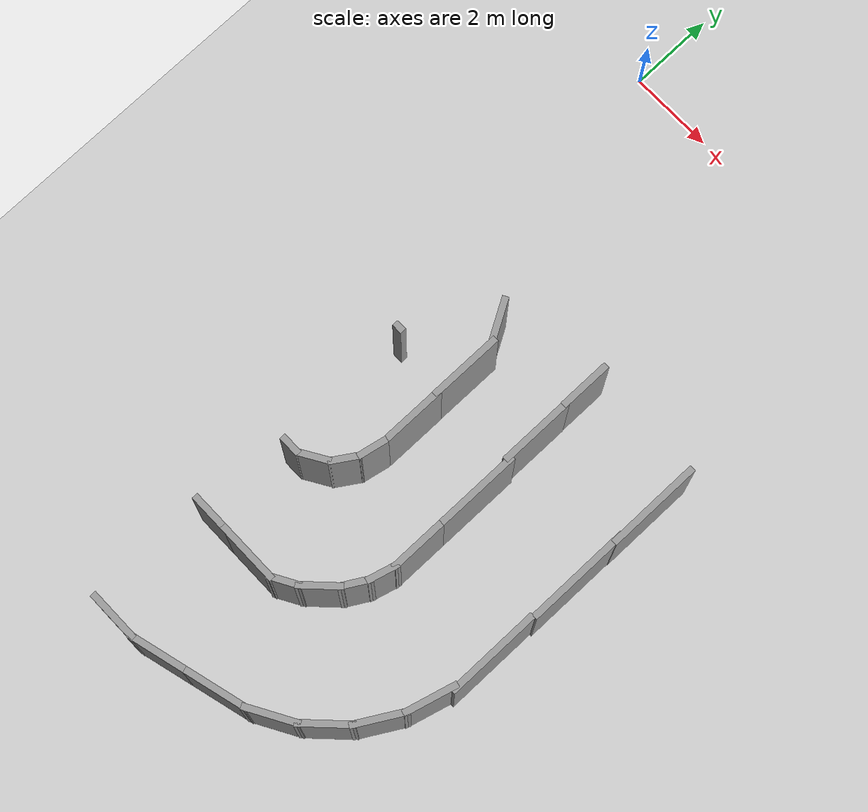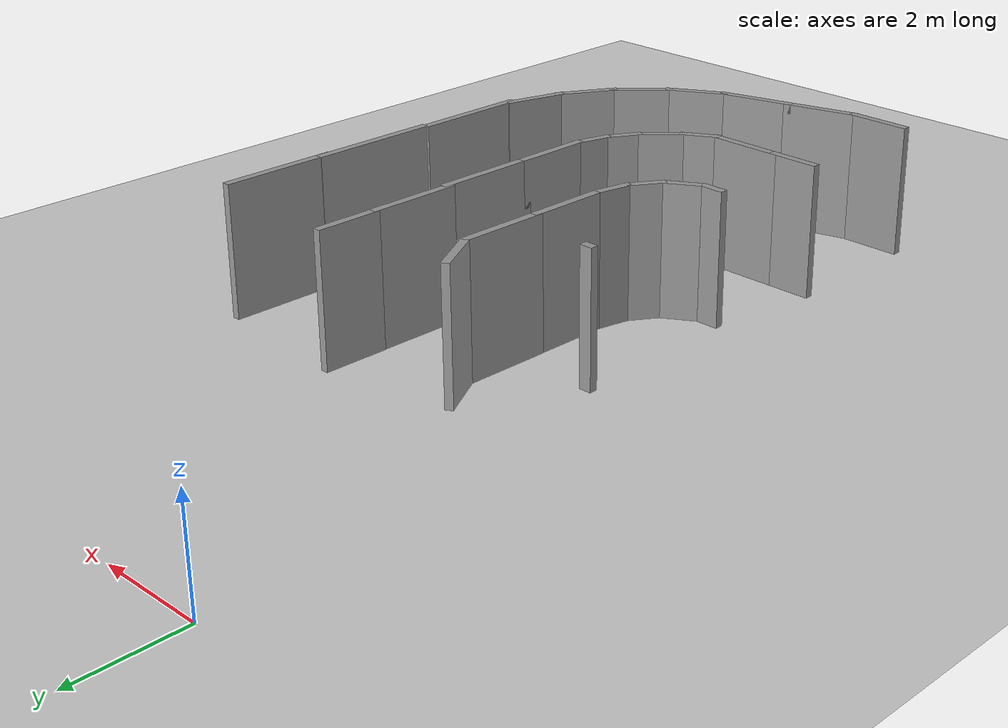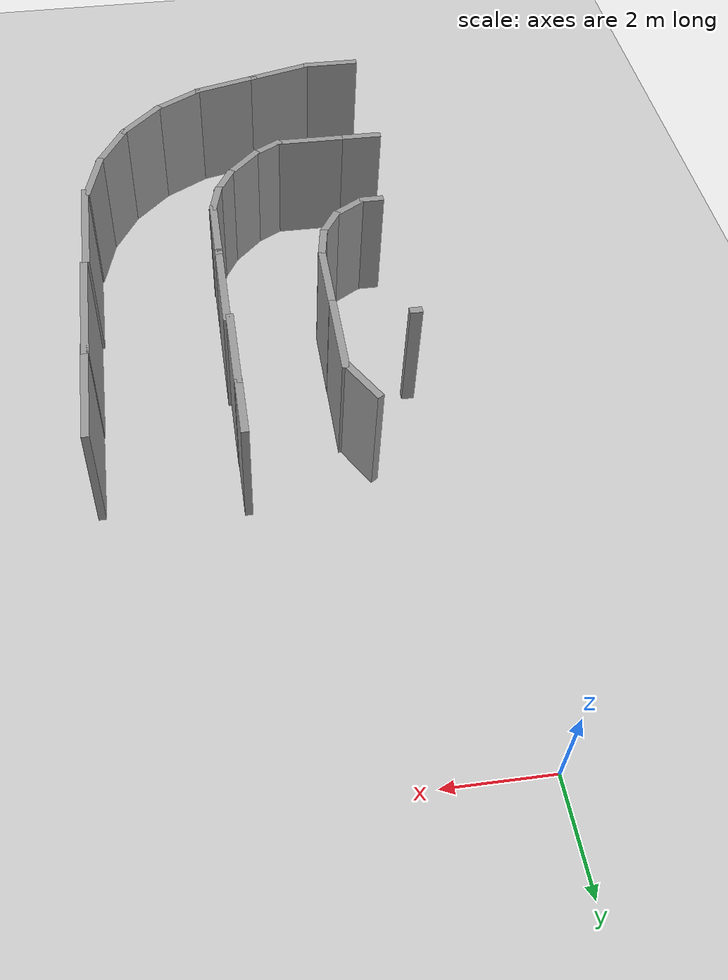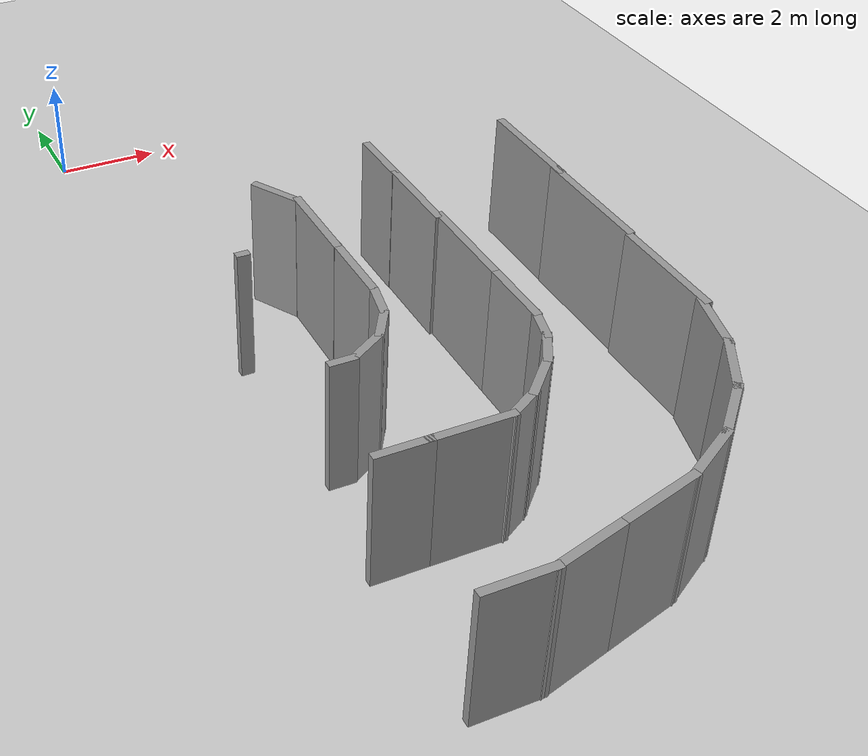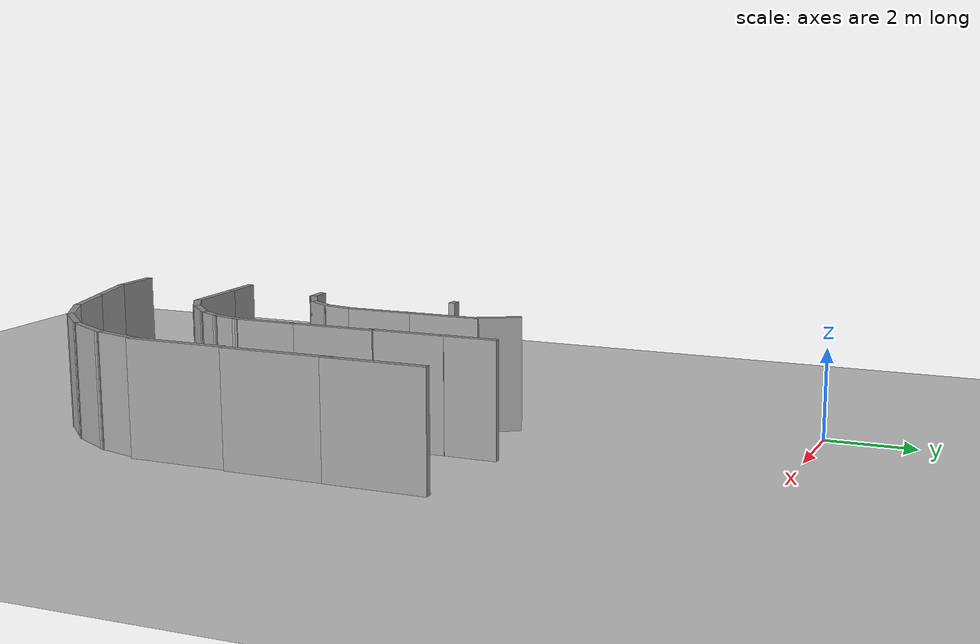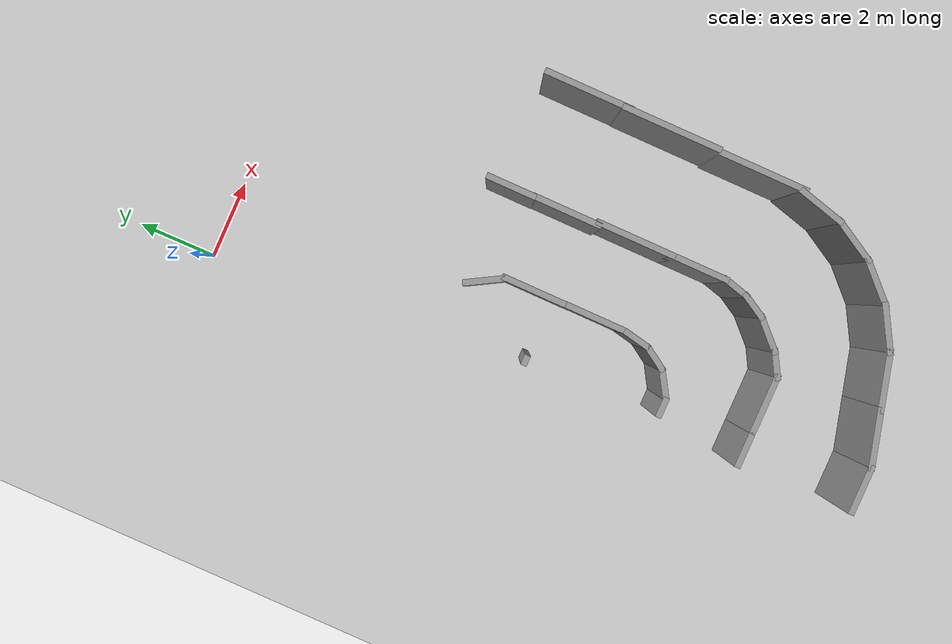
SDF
<sdf version="1.6">
 <world name="default">
  <model name="ground_plane">
   <static>1</static>
   <link name="link">
    <collision name="collision">
     <geometry><plane><normal>0 0 1</normal><size>100 100</size></plane></geometry>
     <surface><friction><ode><mu>100</mu><mu2>50</mu2></ode></friction></surface>
    </collision>
    <visual name="visual">
     <cast_shadows>0</cast_shadows>
     <geometry><plane><normal>0 0 1</normal><size>100 100</size></plane></geometry>
     <material>
      <script><uri>file://media/materials/scripts/gazebo.material</uri><name>Gazebo/Grey</name></script>
     </material>
    </visual>
   </link>
  </model>
  <model name="c-Snail_update_clone">
   <link name="Wall_19">
    <pose>0.800174 -5.81597 0 0 -0 0</pose>
    <visual name="Wall_19_Visual">
     <pose>0 0 1.25 0 -0 0</pose>
     <geometry><box><size>2.25 0.15 2.5</size></box></geometry>
     <material>
      <script><uri>file://media/materials/scripts/gazebo.material</uri><name>Gazebo/Grey</name></script>
      <ambient>1 1 1 1</ambient>
     </material>
     <meta><layer>0</layer></meta>
    </visual>
    <collision name="Wall_19_Collision">
     <pose>0 0 1.25 0 -0 0</pose>
     <geometry><box><size>2.25 0.15 2.5</size></box></geometry>
     <surface>
      <friction>
       <ode><mu>1</mu><mu2>1</mu2><fdir1>0 0 0</fdir1><slip1>0</slip1><slip2>0</slip2></ode>
       <torsional>
        <coefficient>1</coefficient>
        <patch_radius>0</patch_radius>
        <surface_radius>0</surface_radius>
        <use_patch_radius>1</use_patch_radius>
        <ode><slip>0</slip></ode>
       </torsional>
      </friction>
      <bounce><restitution_coefficient>0</restitution_coefficient><threshold>1e+06</threshold></bounce>
      <contact>
       <collide_without_contact>0</collide_without_contact>
       <collide_without_contact_bitmask>1</collide_without_contact_bitmask>
       <collide_bitmask>1</collide_bitmask>
       <ode>
        <soft_cfm>0</soft_cfm>
        <soft_erp>0.2</soft_erp>
        <kp>1e+13</kp>
        <kd>1</kd>
        <max_vel>0.01</max_vel>
        <min_depth>0</min_depth>
       </ode>
       <bullet>
        <split_impulse>1</split_impulse>
        <split_impulse_penetration_threshold>-0.01</split_impulse_penetration_threshold>
        <soft_cfm>0</soft_cfm>
        <soft_erp>0.2</soft_erp>
        <kp>1e+13</kp>
        <kd>1</kd>
       </bullet>
      </contact>
     </surface>
    </collision>
   </link>
   <link name="Wall_20">
    <pose>2.90214 -5.80096 0 0 -0 0</pose>
    <visual name="Wall_20_Visual">
     <pose>0 0 1.25 0 -0 0</pose>
     <geometry><box><size>2.5 0.15 2.5</size></box></geometry>
     <material>
      <script><uri>file://media/materials/scripts/gazebo.material</uri><name>Gazebo/Grey</name></script>
      <ambient>1 1 1 1</ambient>
     </material>
     <meta><layer>0</layer></meta>
    </visual>
    <collision name="Wall_20_Collision">
     <pose>0 0 1.25 0 -0 0</pose>
     <geometry><box><size>2.5 0.15 2.5</size></box></geometry>
     <surface>
      <friction>
       <ode><mu>1</mu><mu2>1</mu2><fdir1>0 0 0</fdir1><slip1>0</slip1><slip2>0</slip2></ode>
       <torsional>
        <coefficient>1</coefficient>
        <patch_radius>0</patch_radius>
        <surface_radius>0</surface_radius>
        <use_patch_radius>1</use_patch_radius>
        <ode><slip>0</slip></ode>
       </torsional>
      </friction>
      <bounce><restitution_coefficient>0</restitution_coefficient><threshold>1e+06</threshold></bounce>
      <contact>
       <collide_without_contact>0</collide_without_contact>
       <collide_without_contact_bitmask>1</collide_without_contact_bitmask>
       <collide_bitmask>1</collide_bitmask>
       <ode>
        <soft_cfm>0</soft_cfm>
        <soft_erp>0.2</soft_erp>
        <kp>1e+13</kp>
        <kd>1</kd>
        <max_vel>0.01</max_vel>
        <min_depth>0</min_depth>
       </ode>
       <bullet>
        <split_impulse>1</split_impulse>
        <split_impulse_penetration_threshold>-0.01</split_impulse_penetration_threshold>
        <soft_cfm>0</soft_cfm>
        <soft_erp>0.2</soft_erp>
        <kp>1e+13</kp>
        <kd>1</kd>
       </bullet>
      </contact>
     </surface>
    </collision>
   </link>
   <link name="Wall_21">
    <pose>5.25228 -5.75509 0 0 -0 0</pose>
    <visual name="Wall_21_Visual">
     <pose>0 0 1.25 0 -0 0</pose>
     <geometry><box><size>2.25 0.15 2.5</size></box></geometry>
     <material>
      <script><uri>file://media/materials/scripts/gazebo.material</uri><name>Gazebo/Grey</name></script>
      <ambient>1 1 1 1</ambient>
     </material>
     <meta><layer>0</layer></meta>
    </visual>
    <collision name="Wall_21_Collision">
     <pose>0 0 1.25 0 -0 0</pose>
     <geometry><box><size>2.25 0.15 2.5</size></box></geometry>
     <surface>
      <friction>
       <ode><mu>1</mu><mu2>1</mu2><fdir1>0 0 0</fdir1><slip1>0</slip1><slip2>0</slip2></ode>
       <torsional>
        <coefficient>1</coefficient>
        <patch_radius>0</patch_radius>
        <surface_radius>0</surface_radius>
        <use_patch_radius>1</use_patch_radius>
        <ode><slip>0</slip></ode>
       </torsional>
      </friction>
      <bounce><restitution_coefficient>0</restitution_coefficient><threshold>1e+06</threshold></bounce>
      <contact>
       <collide_without_contact>0</collide_without_contact>
       <collide_without_contact_bitmask>1</collide_without_contact_bitmask>
       <collide_bitmask>1</collide_bitmask>
       <ode>
        <soft_cfm>0</soft_cfm>
        <soft_erp>0.2</soft_erp>
        <kp>1e+13</kp>
        <kd>1</kd>
        <max_vel>0.01</max_vel>
        <min_depth>0</min_depth>
       </ode>
       <bullet>
        <split_impulse>1</split_impulse>
        <split_impulse_penetration_threshold>-0.01</split_impulse_penetration_threshold>
        <soft_cfm>0</soft_cfm>
        <soft_erp>0.2</soft_erp>
        <kp>1e+13</kp>
        <kd>1</kd>
       </bullet>
      </contact>
     </surface>
    </collision>
   </link>
   <link name="Wall_22">
    <pose>6.78859 -5.56286 0 0 -0 0.261799</pose>
    <visual name="Wall_22_Visual">
     <pose>0 0 1.25 0 -0 0</pose>
     <geometry><box><size>1.25 0.15 2.5</size></box></geometry>
     <material>
      <script><uri>file://media/materials/scripts/gazebo.material</uri><name>Gazebo/Grey</name></script>
      <ambient>1 1 1 1</ambient>
     </material>
     <meta><layer>0</layer></meta>
    </visual>
    <collision name="Wall_22_Collision">
     <pose>0 0 1.25 0 -0 0</pose>
     <geometry><box><size>1.25 0.15 2.5</size></box></geometry>
     <surface>
      <friction>
       <ode><mu>1</mu><mu2>1</mu2><fdir1>0 0 0</fdir1><slip1>0</slip1><slip2>0</slip2></ode>
       <torsional>
        <coefficient>1</coefficient>
        <patch_radius>0</patch_radius>
        <surface_radius>0</surface_radius>
        <use_patch_radius>1</use_patch_radius>
        <ode><slip>0</slip></ode>
       </torsional>
      </friction>
      <bounce><restitution_coefficient>0</restitution_coefficient><threshold>1e+06</threshold></bounce>
      <contact>
       <collide_without_contact>0</collide_without_contact>
       <collide_without_contact_bitmask>1</collide_without_contact_bitmask>
       <collide_bitmask>1</collide_bitmask>
       <ode>
        <soft_cfm>0</soft_cfm>
        <soft_erp>0.2</soft_erp>
        <kp>1e+13</kp>
        <kd>1</kd>
        <max_vel>0.01</max_vel>
        <min_depth>0</min_depth>
       </ode>
       <bullet>
        <split_impulse>1</split_impulse>
        <split_impulse_penetration_threshold>-0.01</split_impulse_penetration_threshold>
        <soft_cfm>0</soft_cfm>
        <soft_erp>0.2</soft_erp>
        <kp>1e+13</kp>
        <kd>1</kd>
       </bullet>
      </contact>
     </surface>
    </collision>
   </link>
   <link name="Wall_23">
    <pose>7.79617 -5.14551 0 0 -0 0.523599</pose>
    <visual name="Wall_23_Visual">
     <pose>0 0 1.25 0 -0 0</pose>
     <geometry><box><size>1.25 0.15 2.5</size></box></geometry>
     <material>
      <script><uri>file://media/materials/scripts/gazebo.material</uri><name>Gazebo/Grey</name></script>
      <ambient>1 1 1 1</ambient>
     </material>
     <meta><layer>0</layer></meta>
    </visual>
    <collision name="Wall_23_Collision">
     <pose>0 0 1.25 0 -0 0</pose>
     <geometry><box><size>1.25 0.15 2.5</size></box></geometry>
     <surface>
      <friction>
       <ode><mu>1</mu><mu2>1</mu2><fdir1>0 0 0</fdir1><slip1>0</slip1><slip2>0</slip2></ode>
       <torsional>
        <coefficient>1</coefficient>
        <patch_radius>0</patch_radius>
        <surface_radius>0</surface_radius>
        <use_patch_radius>1</use_patch_radius>
        <ode><slip>0</slip></ode>
       </torsional>
      </friction>
      <bounce><restitution_coefficient>0</restitution_coefficient><threshold>1e+06</threshold></bounce>
      <contact>
       <collide_without_contact>0</collide_without_contact>
       <collide_without_contact_bitmask>1</collide_without_contact_bitmask>
       <collide_bitmask>1</collide_bitmask>
       <ode>
        <soft_cfm>0</soft_cfm>
        <soft_erp>0.2</soft_erp>
        <kp>1e+13</kp>
        <kd>1</kd>
        <max_vel>0.01</max_vel>
        <min_depth>0</min_depth>
       </ode>
       <bullet>
        <split_impulse>1</split_impulse>
        <split_impulse_penetration_threshold>-0.01</split_impulse_penetration_threshold>
        <soft_cfm>0</soft_cfm>
        <soft_erp>0.2</soft_erp>
        <kp>1e+13</kp>
        <kd>1</kd>
       </bullet>
      </contact>
     </surface>
    </collision>
   </link>
   <link name="Wall_24">
    <pose>8.66139 -4.4816 0 0 -0 0.785398</pose>
    <visual name="Wall_24_Visual">
     <pose>0 0 1.25 0 -0 0</pose>
     <geometry><box><size>1.25 0.15 2.5</size></box></geometry>
     <material>
      <script><uri>file://media/materials/scripts/gazebo.material</uri><name>Gazebo/Grey</name></script>
      <ambient>1 1 1 1</ambient>
     </material>
     <meta><layer>0</layer></meta>
    </visual>
    <collision name="Wall_24_Collision">
     <pose>0 0 1.25 0 -0 0</pose>
     <geometry><box><size>1.25 0.15 2.5</size></box></geometry>
     <surface>
      <friction>
       <ode><mu>1</mu><mu2>1</mu2><fdir1>0 0 0</fdir1><slip1>0</slip1><slip2>0</slip2></ode>
       <torsional>
        <coefficient>1</coefficient>
        <patch_radius>0</patch_radius>
        <surface_radius>0</surface_radius>
        <use_patch_radius>1</use_patch_radius>
        <ode><slip>0</slip></ode>
       </torsional>
      </friction>
      <bounce><restitution_coefficient>0</restitution_coefficient><threshold>1e+06</threshold></bounce>
      <contact>
       <collide_without_contact>0</collide_without_contact>
       <collide_without_contact_bitmask>1</collide_without_contact_bitmask>
       <collide_bitmask>1</collide_bitmask>
       <ode>
        <soft_cfm>0</soft_cfm>
        <soft_erp>0.2</soft_erp>
        <kp>1e+13</kp>
        <kd>1</kd>
        <max_vel>0.01</max_vel>
        <min_depth>0</min_depth>
       </ode>
       <bullet>
        <split_impulse>1</split_impulse>
        <split_impulse_penetration_threshold>-0.01</split_impulse_penetration_threshold>
        <soft_cfm>0</soft_cfm>
        <soft_erp>0.2</soft_erp>
        <kp>1e+13</kp>
        <kd>1</kd>
       </bullet>
      </contact>
     </surface>
    </collision>
   </link>
   <link name="Wall_25">
    <pose>9.3253 -3.61638 0 0 -0 1.0472</pose>
    <visual name="Wall_25_Visual">
     <pose>0 0 1.25 0 -0 0</pose>
     <geometry><box><size>1.25 0.15 2.5</size></box></geometry>
     <material>
      <script><uri>file://media/materials/scripts/gazebo.material</uri><name>Gazebo/Grey</name></script>
      <ambient>1 1 1 1</ambient>
     </material>
     <meta><layer>0</layer></meta>
    </visual>
    <collision name="Wall_25_Collision">
     <pose>0 0 1.25 0 -0 0</pose>
     <geometry><box><size>1.25 0.15 2.5</size></box></geometry>
     <surface>
      <friction>
       <ode><mu>1</mu><mu2>1</mu2><fdir1>0 0 0</fdir1><slip1>0</slip1><slip2>0</slip2></ode>
       <torsional>
        <coefficient>1</coefficient>
        <patch_radius>0</patch_radius>
        <surface_radius>0</surface_radius>
        <use_patch_radius>1</use_patch_radius>
        <ode><slip>0</slip></ode>
       </torsional>
      </friction>
      <bounce><restitution_coefficient>0</restitution_coefficient><threshold>1e+06</threshold></bounce>
      <contact>
       <collide_without_contact>0</collide_without_contact>
       <collide_without_contact_bitmask>1</collide_without_contact_bitmask>
       <collide_bitmask>1</collide_bitmask>
       <ode>
        <soft_cfm>0</soft_cfm>
        <soft_erp>0.2</soft_erp>
        <kp>1e+13</kp>
        <kd>1</kd>
        <max_vel>0.01</max_vel>
        <min_depth>0</min_depth>
       </ode>
       <bullet>
        <split_impulse>1</split_impulse>
        <split_impulse_penetration_threshold>-0.01</split_impulse_penetration_threshold>
        <soft_cfm>0</soft_cfm>
        <soft_erp>0.2</soft_erp>
        <kp>1e+13</kp>
        <kd>1</kd>
       </bullet>
      </contact>
     </surface>
    </collision>
   </link>
   <link name="Wall_26">
    <pose>9.775 -2.48806 0 0 -0 1.309</pose>
    <visual name="Wall_26_Visual">
     <pose>0 0 1.25 0 -0 0</pose>
     <geometry><box><size>1.5 0.15 2.5</size></box></geometry>
     <material>
      <script><uri>file://media/materials/scripts/gazebo.material</uri><name>Gazebo/Grey</name></script>
      <ambient>1 1 1 1</ambient>
     </material>
     <meta><layer>0</layer></meta>
    </visual>
    <collision name="Wall_26_Collision">
     <pose>0 0 1.25 0 -0 0</pose>
     <geometry><box><size>1.5 0.15 2.5</size></box></geometry>
     <surface>
      <friction>
       <ode><mu>1</mu><mu2>1</mu2><fdir1>0 0 0</fdir1><slip1>0</slip1><slip2>0</slip2></ode>
       <torsional>
        <coefficient>1</coefficient>
        <patch_radius>0</patch_radius>
        <surface_radius>0</surface_radius>
        <use_patch_radius>1</use_patch_radius>
        <ode><slip>0</slip></ode>
       </torsional>
      </friction>
      <bounce><restitution_coefficient>0</restitution_coefficient><threshold>1e+06</threshold></bounce>
      <contact>
       <collide_without_contact>0</collide_without_contact>
       <collide_without_contact_bitmask>1</collide_without_contact_bitmask>
       <collide_bitmask>1</collide_bitmask>
       <ode>
        <soft_cfm>0</soft_cfm>
        <soft_erp>0.2</soft_erp>
        <kp>1e+13</kp>
        <kd>1</kd>
        <max_vel>0.01</max_vel>
        <min_depth>0</min_depth>
       </ode>
       <bullet>
        <split_impulse>1</split_impulse>
        <split_impulse_penetration_threshold>-0.01</split_impulse_penetration_threshold>
        <soft_cfm>0</soft_cfm>
        <soft_erp>0.2</soft_erp>
        <kp>1e+13</kp>
        <kd>1</kd>
       </bullet>
      </contact>
     </surface>
    </collision>
   </link>
   <link name="Wall_27">
    <pose>10.1244 -1.18406 0 0 -0 1.309</pose>
    <visual name="Wall_27_Visual">
     <pose>0 0 1.25 0 -0 0</pose>
     <geometry><box><size>1.5 0.15 2.5</size></box></geometry>
     <material>
      <script><uri>file://media/materials/scripts/gazebo.material</uri><name>Gazebo/Grey</name></script>
      <ambient>1 1 1 1</ambient>
     </material>
     <meta><layer>0</layer></meta>
    </visual>
    <collision name="Wall_27_Collision">
     <pose>0 0 1.25 0 -0 0</pose>
     <geometry><box><size>1.5 0.15 2.5</size></box></geometry>
     <surface>
      <friction>
       <ode><mu>1</mu><mu2>1</mu2><fdir1>0 0 0</fdir1><slip1>0</slip1><slip2>0</slip2></ode>
       <torsional>
        <coefficient>1</coefficient>
        <patch_radius>0</patch_radius>
        <surface_radius>0</surface_radius>
        <use_patch_radius>1</use_patch_radius>
        <ode><slip>0</slip></ode>
       </torsional>
      </friction>
      <bounce><restitution_coefficient>0</restitution_coefficient><threshold>1e+06</threshold></bounce>
      <contact>
       <collide_without_contact>0</collide_without_contact>
       <collide_without_contact_bitmask>1</collide_without_contact_bitmask>
       <collide_bitmask>1</collide_bitmask>
       <ode>
        <soft_cfm>0</soft_cfm>
        <soft_erp>0.2</soft_erp>
        <kp>1e+13</kp>
        <kd>1</kd>
        <max_vel>0.01</max_vel>
        <min_depth>0</min_depth>
       </ode>
       <bullet>
        <split_impulse>1</split_impulse>
        <split_impulse_penetration_threshold>-0.01</split_impulse_penetration_threshold>
        <soft_cfm>0</soft_cfm>
        <soft_erp>0.2</soft_erp>
        <kp>1e+13</kp>
        <kd>1</kd>
       </bullet>
      </contact>
     </surface>
    </collision>
   </link>
   <link name="Wall_28">
    <pose>10.2991 0.017937 0 0 -0 1.5708</pose>
    <visual name="Wall_28_Visual">
     <pose>0 0 1.25 0 -0 0</pose>
     <geometry><box><size>1.25 0.15 2.5</size></box></geometry>
     <material>
      <script><uri>file://media/materials/scripts/gazebo.material</uri><name>Gazebo/Grey</name></script>
      <ambient>1 1 1 1</ambient>
     </material>
     <meta><layer>0</layer></meta>
    </visual>
    <collision name="Wall_28_Collision">
     <pose>0 0 1.25 0 -0 0</pose>
     <geometry><box><size>1.25 0.15 2.5</size></box></geometry>
     <surface>
      <friction>
       <ode><mu>1</mu><mu2>1</mu2><fdir1>0 0 0</fdir1><slip1>0</slip1><slip2>0</slip2></ode>
       <torsional>
        <coefficient>1</coefficient>
        <patch_radius>0</patch_radius>
        <surface_radius>0</surface_radius>
        <use_patch_radius>1</use_patch_radius>
        <ode><slip>0</slip></ode>
       </torsional>
      </friction>
      <bounce><restitution_coefficient>0</restitution_coefficient><threshold>1e+06</threshold></bounce>
      <contact>
       <collide_without_contact>0</collide_without_contact>
       <collide_without_contact_bitmask>1</collide_without_contact_bitmask>
       <collide_bitmask>1</collide_bitmask>
       <ode>
        <soft_cfm>0</soft_cfm>
        <soft_erp>0.2</soft_erp>
        <kp>1e+13</kp>
        <kd>1</kd>
        <max_vel>0.01</max_vel>
        <min_depth>0</min_depth>
       </ode>
       <bullet>
        <split_impulse>1</split_impulse>
        <split_impulse_penetration_threshold>-0.01</split_impulse_penetration_threshold>
        <soft_cfm>0</soft_cfm>
        <soft_erp>0.2</soft_erp>
        <kp>1e+13</kp>
        <kd>1</kd>
       </bullet>
      </contact>
     </surface>
    </collision>
   </link>
   <link name="Wall_46">
    <pose>0.062812 -3.06018 0 0 -0 0</pose>
    <visual name="Wall_46_Visual">
     <pose>0 0 1.25 0 -0 0</pose>
     <geometry><box><size>1.25 0.15 2.5</size></box></geometry>
     <material>
      <script><uri>file://media/materials/scripts/gazebo.material</uri><name>Gazebo/Grey</name></script>
      <ambient>1 1 1 1</ambient>
     </material>
     <meta><layer>0</layer></meta>
    </visual>
    <collision name="Wall_46_Collision">
     <pose>0 0 1.25 0 -0 0</pose>
     <geometry><box><size>1.25 0.15 2.5</size></box></geometry>
     <surface>
      <friction>
       <ode><mu>1</mu><mu2>1</mu2><fdir1>0 0 0</fdir1><slip1>0</slip1><slip2>0</slip2></ode>
       <torsional>
        <coefficient>1</coefficient>
        <patch_radius>0</patch_radius>
        <surface_radius>0</surface_radius>
        <use_patch_radius>1</use_patch_radius>
        <ode><slip>0</slip></ode>
       </torsional>
      </friction>
      <bounce><restitution_coefficient>0</restitution_coefficient><threshold>1e+06</threshold></bounce>
      <contact>
       <collide_without_contact>0</collide_without_contact>
       <collide_without_contact_bitmask>1</collide_without_contact_bitmask>
       <collide_bitmask>1</collide_bitmask>
       <ode>
        <soft_cfm>0</soft_cfm>
        <soft_erp>0.2</soft_erp>
        <kp>1e+13</kp>
        <kd>1</kd>
        <max_vel>0.01</max_vel>
        <min_depth>0</min_depth>
       </ode>
       <bullet>
        <split_impulse>1</split_impulse>
        <split_impulse_penetration_threshold>-0.01</split_impulse_penetration_threshold>
        <soft_cfm>0</soft_cfm>
        <soft_erp>0.2</soft_erp>
        <kp>1e+13</kp>
        <kd>1</kd>
       </bullet>
      </contact>
     </surface>
    </collision>
   </link>
   <link name="Wall_47">
    <pose>1.4692 -3.06934 0 0 -0 0</pose>
    <visual name="Wall_47_Visual">
     <pose>0 0 1.25 0 -0 0</pose>
     <geometry><box><size>1.75 0.15 2.5</size></box></geometry>
     <material>
      <script><uri>file://media/materials/scripts/gazebo.material</uri><name>Gazebo/Grey</name></script>
      <ambient>1 1 1 1</ambient>
     </material>
     <meta><layer>0</layer></meta>
    </visual>
    <collision name="Wall_47_Collision">
     <pose>0 0 1.25 0 -0 0</pose>
     <geometry><box><size>1.75 0.15 2.5</size></box></geometry>
     <surface>
      <friction>
       <ode><mu>1</mu><mu2>1</mu2><fdir1>0 0 0</fdir1><slip1>0</slip1><slip2>0</slip2></ode>
       <torsional>
        <coefficient>1</coefficient>
        <patch_radius>0</patch_radius>
        <surface_radius>0</surface_radius>
        <use_patch_radius>1</use_patch_radius>
        <ode><slip>0</slip></ode>
       </torsional>
      </friction>
      <bounce><restitution_coefficient>0</restitution_coefficient><threshold>1e+06</threshold></bounce>
      <contact>
       <collide_without_contact>0</collide_without_contact>
       <collide_without_contact_bitmask>1</collide_without_contact_bitmask>
       <collide_bitmask>1</collide_bitmask>
       <ode>
        <soft_cfm>0</soft_cfm>
        <soft_erp>0.2</soft_erp>
        <kp>1e+13</kp>
        <kd>1</kd>
        <max_vel>0.01</max_vel>
        <min_depth>0</min_depth>
       </ode>
       <bullet>
        <split_impulse>1</split_impulse>
        <split_impulse_penetration_threshold>-0.01</split_impulse_penetration_threshold>
        <soft_cfm>0</soft_cfm>
        <soft_erp>0.2</soft_erp>
        <kp>1e+13</kp>
        <kd>1</kd>
       </bullet>
      </contact>
     </surface>
    </collision>
   </link>
   <link name="Wall_48">
    <pose>3.18497 -3.12574 0 0 -0 0</pose>
    <visual name="Wall_48_Visual">
     <pose>0 0 1.25 0 -0 0</pose>
     <geometry><box><size>2 0.15 2.5</size></box></geometry>
     <material>
      <script><uri>file://media/materials/scripts/gazebo.material</uri><name>Gazebo/Grey</name></script>
      <ambient>1 1 1 1</ambient>
     </material>
     <meta><layer>0</layer></meta>
    </visual>
    <collision name="Wall_48_Collision">
     <pose>0 0 1.25 0 -0 0</pose>
     <geometry><box><size>2 0.15 2.5</size></box></geometry>
     <surface>
      <friction>
       <ode><mu>1</mu><mu2>1</mu2><fdir1>0 0 0</fdir1><slip1>0</slip1><slip2>0</slip2></ode>
       <torsional>
        <coefficient>1</coefficient>
        <patch_radius>0</patch_radius>
        <surface_radius>0</surface_radius>
        <use_patch_radius>1</use_patch_radius>
        <ode><slip>0</slip></ode>
       </torsional>
      </friction>
      <bounce><restitution_coefficient>0</restitution_coefficient><threshold>1e+06</threshold></bounce>
      <contact>
       <collide_without_contact>0</collide_without_contact>
       <collide_without_contact_bitmask>1</collide_without_contact_bitmask>
       <collide_bitmask>1</collide_bitmask>
       <ode>
        <soft_cfm>0</soft_cfm>
        <soft_erp>0.2</soft_erp>
        <kp>1e+13</kp>
        <kd>1</kd>
        <max_vel>0.01</max_vel>
        <min_depth>0</min_depth>
       </ode>
       <bullet>
        <split_impulse>1</split_impulse>
        <split_impulse_penetration_threshold>-0.01</split_impulse_penetration_threshold>
        <soft_cfm>0</soft_cfm>
        <soft_erp>0.2</soft_erp>
        <kp>1e+13</kp>
        <kd>1</kd>
       </bullet>
      </contact>
     </surface>
    </collision>
   </link>
   <link name="Wall_49">
    <pose>4.78497 -3.12574 0 0 -0 0</pose>
    <visual name="Wall_49_Visual">
     <pose>0 0 1.25 0 -0 0</pose>
     <geometry><box><size>1.5 0.15 2.5</size></box></geometry>
     <material>
      <script><uri>file://media/materials/scripts/gazebo.material</uri><name>Gazebo/Grey</name></script>
      <ambient>1 1 1 1</ambient>
     </material>
     <meta><layer>0</layer></meta>
    </visual>
    <collision name="Wall_49_Collision">
     <pose>0 0 1.25 0 -0 0</pose>
     <geometry><box><size>1.5 0.15 2.5</size></box></geometry>
     <surface>
      <friction>
       <ode><mu>1</mu><mu2>1</mu2><fdir1>0 0 0</fdir1><slip1>0</slip1><slip2>0</slip2></ode>
       <torsional>
        <coefficient>1</coefficient>
        <patch_radius>0</patch_radius>
        <surface_radius>0</surface_radius>
        <use_patch_radius>1</use_patch_radius>
        <ode><slip>0</slip></ode>
       </torsional>
      </friction>
      <bounce><restitution_coefficient>0</restitution_coefficient><threshold>1e+06</threshold></bounce>
      <contact>
       <collide_without_contact>0</collide_without_contact>
       <collide_without_contact_bitmask>1</collide_without_contact_bitmask>
       <collide_bitmask>1</collide_bitmask>
       <ode>
        <soft_cfm>0</soft_cfm>
        <soft_erp>0.2</soft_erp>
        <kp>1e+13</kp>
        <kd>1</kd>
        <max_vel>0.01</max_vel>
        <min_depth>0</min_depth>
       </ode>
       <bullet>
        <split_impulse>1</split_impulse>
        <split_impulse_penetration_threshold>-0.01</split_impulse_penetration_threshold>
        <soft_cfm>0</soft_cfm>
        <soft_erp>0.2</soft_erp>
        <kp>1e+13</kp>
        <kd>1</kd>
       </bullet>
      </contact>
     </surface>
    </collision>
   </link>
   <link name="Wall_50">
    <pose>5.74975 -3.04809 0 0 -0 0.261799</pose>
    <visual name="Wall_50_Visual">
     <pose>0 0 1.25 0 -0 0</pose>
     <geometry><box><size>0.75 0.15 2.5</size></box></geometry>
     <material>
      <script><uri>file://media/materials/scripts/gazebo.material</uri><name>Gazebo/Grey</name></script>
      <ambient>1 1 1 1</ambient>
     </material>
     <meta><layer>0</layer></meta>
    </visual>
    <collision name="Wall_50_Collision">
     <pose>0 0 1.25 0 -0 0</pose>
     <geometry><box><size>0.75 0.15 2.5</size></box></geometry>
     <surface>
      <friction>
       <ode><mu>1</mu><mu2>1</mu2><fdir1>0 0 0</fdir1><slip1>0</slip1><slip2>0</slip2></ode>
       <torsional>
        <coefficient>1</coefficient>
        <patch_radius>0</patch_radius>
        <surface_radius>0</surface_radius>
        <use_patch_radius>1</use_patch_radius>
        <ode><slip>0</slip></ode>
       </torsional>
      </friction>
      <bounce><restitution_coefficient>0</restitution_coefficient><threshold>1e+06</threshold></bounce>
      <contact>
       <collide_without_contact>0</collide_without_contact>
       <collide_without_contact_bitmask>1</collide_without_contact_bitmask>
       <collide_bitmask>1</collide_bitmask>
       <ode>
        <soft_cfm>0</soft_cfm>
        <soft_erp>0.2</soft_erp>
        <kp>1e+13</kp>
        <kd>1</kd>
        <max_vel>0.01</max_vel>
        <min_depth>0</min_depth>
       </ode>
       <bullet>
        <split_impulse>1</split_impulse>
        <split_impulse_penetration_threshold>-0.01</split_impulse_penetration_threshold>
        <soft_cfm>0</soft_cfm>
        <soft_erp>0.2</soft_erp>
        <kp>1e+13</kp>
        <kd>1</kd>
       </bullet>
      </contact>
     </surface>
    </collision>
   </link>
   <link name="Wall_51">
    <pose>6.29933 -2.82045 0 0 -0 0.523599</pose>
    <visual name="Wall_51_Visual">
     <pose>0 0 1.25 0 -0 0</pose>
     <geometry><box><size>0.75 0.15 2.5</size></box></geometry>
     <material>
      <script><uri>file://media/materials/scripts/gazebo.material</uri><name>Gazebo/Grey</name></script>
      <ambient>1 1 1 1</ambient>
     </material>
     <meta><layer>0</layer></meta>
    </visual>
    <collision name="Wall_51_Collision">
     <pose>0 0 1.25 0 -0 0</pose>
     <geometry><box><size>0.75 0.15 2.5</size></box></geometry>
     <surface>
      <friction>
       <ode><mu>1</mu><mu2>1</mu2><fdir1>0 0 0</fdir1><slip1>0</slip1><slip2>0</slip2></ode>
       <torsional>
        <coefficient>1</coefficient>
        <patch_radius>0</patch_radius>
        <surface_radius>0</surface_radius>
        <use_patch_radius>1</use_patch_radius>
        <ode><slip>0</slip></ode>
       </torsional>
      </friction>
      <bounce><restitution_coefficient>0</restitution_coefficient><threshold>1e+06</threshold></bounce>
      <contact>
       <collide_without_contact>0</collide_without_contact>
       <collide_without_contact_bitmask>1</collide_without_contact_bitmask>
       <collide_bitmask>1</collide_bitmask>
       <ode>
        <soft_cfm>0</soft_cfm>
        <soft_erp>0.2</soft_erp>
        <kp>1e+13</kp>
        <kd>1</kd>
        <max_vel>0.01</max_vel>
        <min_depth>0</min_depth>
       </ode>
       <bullet>
        <split_impulse>1</split_impulse>
        <split_impulse_penetration_threshold>-0.01</split_impulse_penetration_threshold>
        <soft_cfm>0</soft_cfm>
        <soft_erp>0.2</soft_erp>
        <kp>1e+13</kp>
        <kd>1</kd>
       </bullet>
      </contact>
     </surface>
    </collision>
   </link>
   <link name="Wall_52">
    <pose>6.85966 -2.36993 0 0 -0 0.785398</pose>
    <visual name="Wall_52_Visual">
     <pose>0 0 1.25 0 -0 0</pose>
     <geometry><box><size>1 0.15 2.5</size></box></geometry>
     <material>
      <script><uri>file://media/materials/scripts/gazebo.material</uri><name>Gazebo/Grey</name></script>
      <ambient>1 1 1 1</ambient>
     </material>
     <meta><layer>0</layer></meta>
    </visual>
    <collision name="Wall_52_Collision">
     <pose>0 0 1.25 0 -0 0</pose>
     <geometry><box><size>1 0.15 2.5</size></box></geometry>
     <surface>
      <friction>
       <ode><mu>1</mu><mu2>1</mu2><fdir1>0 0 0</fdir1><slip1>0</slip1><slip2>0</slip2></ode>
       <torsional>
        <coefficient>1</coefficient>
        <patch_radius>0</patch_radius>
        <surface_radius>0</surface_radius>
        <use_patch_radius>1</use_patch_radius>
        <ode><slip>0</slip></ode>
       </torsional>
      </friction>
      <bounce><restitution_coefficient>0</restitution_coefficient><threshold>1e+06</threshold></bounce>
      <contact>
       <collide_without_contact>0</collide_without_contact>
       <collide_without_contact_bitmask>1</collide_without_contact_bitmask>
       <collide_bitmask>1</collide_bitmask>
       <ode>
        <soft_cfm>0</soft_cfm>
        <soft_erp>0.2</soft_erp>
        <kp>1e+13</kp>
        <kd>1</kd>
        <max_vel>0.01</max_vel>
        <min_depth>0</min_depth>
       </ode>
       <bullet>
        <split_impulse>1</split_impulse>
        <split_impulse_penetration_threshold>-0.01</split_impulse_penetration_threshold>
        <soft_cfm>0</soft_cfm>
        <soft_erp>0.2</soft_erp>
        <kp>1e+13</kp>
        <kd>1</kd>
       </bullet>
      </contact>
     </surface>
    </collision>
   </link>
   <link name="Wall_53">
    <pose>7.31018 -1.8096 0 0 -0 1.0472</pose>
    <visual name="Wall_53_Visual">
     <pose>0 0 1.25 0 -0 0</pose>
     <geometry><box><size>0.75 0.15 2.5</size></box></geometry>
     <material>
      <script><uri>file://media/materials/scripts/gazebo.material</uri><name>Gazebo/Grey</name></script>
      <ambient>1 1 1 1</ambient>
     </material>
     <meta><layer>0</layer></meta>
    </visual>
    <collision name="Wall_53_Collision">
     <pose>0 0 1.25 0 -0 0</pose>
     <geometry><box><size>0.75 0.15 2.5</size></box></geometry>
     <surface>
      <friction>
       <ode><mu>1</mu><mu2>1</mu2><fdir1>0 0 0</fdir1><slip1>0</slip1><slip2>0</slip2></ode>
       <torsional>
        <coefficient>1</coefficient>
        <patch_radius>0</patch_radius>
        <surface_radius>0</surface_radius>
        <use_patch_radius>1</use_patch_radius>
        <ode><slip>0</slip></ode>
       </torsional>
      </friction>
      <bounce><restitution_coefficient>0</restitution_coefficient><threshold>1e+06</threshold></bounce>
      <contact>
       <collide_without_contact>0</collide_without_contact>
       <collide_without_contact_bitmask>1</collide_without_contact_bitmask>
       <collide_bitmask>1</collide_bitmask>
       <ode>
        <soft_cfm>0</soft_cfm>
        <soft_erp>0.2</soft_erp>
        <kp>1e+13</kp>
        <kd>1</kd>
        <max_vel>0.01</max_vel>
        <min_depth>0</min_depth>
       </ode>
       <bullet>
        <split_impulse>1</split_impulse>
        <split_impulse_penetration_threshold>-0.01</split_impulse_penetration_threshold>
        <soft_cfm>0</soft_cfm>
        <soft_erp>0.2</soft_erp>
        <kp>1e+13</kp>
        <kd>1</kd>
       </bullet>
      </contact>
     </surface>
    </collision>
   </link>
   <link name="Wall_54">
    <pose>7.46018 -0.874794 0 0 -0 1.5708</pose>
    <visual name="Wall_54_Visual">
     <pose>0 0 1.25 0 -0 0</pose>
     <geometry><box><size>1.5 0.15 2.5</size></box></geometry>
     <material>
      <script><uri>file://media/materials/scripts/gazebo.material</uri><name>Gazebo/Grey</name></script>
      <ambient>1 1 1 1</ambient>
     </material>
     <meta><layer>0</layer></meta>
    </visual>
    <collision name="Wall_54_Collision">
     <pose>0 0 1.25 0 -0 0</pose>
     <geometry><box><size>1.5 0.15 2.5</size></box></geometry>
     <surface>
      <friction>
       <ode><mu>1</mu><mu2>1</mu2><fdir1>0 0 0</fdir1><slip1>0</slip1><slip2>0</slip2></ode>
       <torsional>
        <coefficient>1</coefficient>
        <patch_radius>0</patch_radius>
        <surface_radius>0</surface_radius>
        <use_patch_radius>1</use_patch_radius>
        <ode><slip>0</slip></ode>
       </torsional>
      </friction>
      <bounce><restitution_coefficient>0</restitution_coefficient><threshold>1e+06</threshold></bounce>
      <contact>
       <collide_without_contact>0</collide_without_contact>
       <collide_without_contact_bitmask>1</collide_without_contact_bitmask>
       <collide_bitmask>1</collide_bitmask>
       <ode>
        <soft_cfm>0</soft_cfm>
        <soft_erp>0.2</soft_erp>
        <kp>1e+13</kp>
        <kd>1</kd>
        <max_vel>0.01</max_vel>
        <min_depth>0</min_depth>
       </ode>
       <bullet>
        <split_impulse>1</split_impulse>
        <split_impulse_penetration_threshold>-0.01</split_impulse_penetration_threshold>
        <soft_cfm>0</soft_cfm>
        <soft_erp>0.2</soft_erp>
        <kp>1e+13</kp>
        <kd>1</kd>
       </bullet>
      </contact>
     </surface>
    </collision>
   </link>
   <link name="Wall_55">
    <pose>7.46018 0.225207 0 0 -0 1.5708</pose>
    <visual name="Wall_55_Visual">
     <pose>0 0 1.25 0 -0 0</pose>
     <geometry><box><size>1 0.15 2.5</size></box></geometry>
     <material>
      <script><uri>file://media/materials/scripts/gazebo.material</uri><name>Gazebo/Grey</name></script>
      <ambient>1 1 1 1</ambient>
     </material>
     <meta><layer>0</layer></meta>
    </visual>
    <collision name="Wall_55_Collision">
     <pose>0 0 1.25 0 -0 0</pose>
     <geometry><box><size>1 0.15 2.5</size></box></geometry>
     <surface>
      <friction>
       <ode><mu>1</mu><mu2>1</mu2><fdir1>0 0 0</fdir1><slip1>0</slip1><slip2>0</slip2></ode>
       <torsional>
        <coefficient>1</coefficient>
        <patch_radius>0</patch_radius>
        <surface_radius>0</surface_radius>
        <use_patch_radius>1</use_patch_radius>
        <ode><slip>0</slip></ode>
       </torsional>
      </friction>
      <bounce><restitution_coefficient>0</restitution_coefficient><threshold>1e+06</threshold></bounce>
      <contact>
       <collide_without_contact>0</collide_without_contact>
       <collide_without_contact_bitmask>1</collide_without_contact_bitmask>
       <collide_bitmask>1</collide_bitmask>
       <ode>
        <soft_cfm>0</soft_cfm>
        <soft_erp>0.2</soft_erp>
        <kp>1e+13</kp>
        <kd>1</kd>
        <max_vel>0.01</max_vel>
        <min_depth>0</min_depth>
       </ode>
       <bullet>
        <split_impulse>1</split_impulse>
        <split_impulse_penetration_threshold>-0.01</split_impulse_penetration_threshold>
        <soft_cfm>0</soft_cfm>
        <soft_erp>0.2</soft_erp>
        <kp>1e+13</kp>
        <kd>1</kd>
       </bullet>
      </contact>
     </surface>
    </collision>
   </link>
   <link name="Wall_69">
    <pose>0.371942 -0.821214 0 0 0 -0.523599</pose>
    <visual name="Wall_69_Visual">
     <pose>0 0 1.25 0 -0 0</pose>
     <geometry><box><size>1 0.15 2.5</size></box></geometry>
     <material>
      <script><uri>file://media/materials/scripts/gazebo.material</uri><name>Gazebo/Grey</name></script>
      <ambient>1 1 1 1</ambient>
     </material>
     <meta><layer>0</layer></meta>
    </visual>
    <collision name="Wall_69_Collision">
     <pose>0 0 1.25 0 -0 0</pose>
     <geometry><box><size>1 0.15 2.5</size></box></geometry>
     <surface>
      <friction>
       <ode><mu>1</mu><mu2>1</mu2><fdir1>0 0 0</fdir1><slip1>0</slip1><slip2>0</slip2></ode>
       <torsional>
        <coefficient>1</coefficient>
        <patch_radius>0</patch_radius>
        <surface_radius>0</surface_radius>
        <use_patch_radius>1</use_patch_radius>
        <ode><slip>0</slip></ode>
       </torsional>
      </friction>
      <bounce><restitution_coefficient>0</restitution_coefficient><threshold>1e+06</threshold></bounce>
      <contact>
       <collide_without_contact>0</collide_without_contact>
       <collide_without_contact_bitmask>1</collide_without_contact_bitmask>
       <collide_bitmask>1</collide_bitmask>
       <ode>
        <soft_cfm>0</soft_cfm>
        <soft_erp>0.2</soft_erp>
        <kp>1e+13</kp>
        <kd>1</kd>
        <max_vel>0.01</max_vel>
        <min_depth>0</min_depth>
       </ode>
       <bullet>
        <split_impulse>1</split_impulse>
        <split_impulse_penetration_threshold>-0.01</split_impulse_penetration_threshold>
        <soft_cfm>0</soft_cfm>
        <soft_erp>0.2</soft_erp>
        <kp>1e+13</kp>
        <kd>1</kd>
       </bullet>
      </contact>
     </surface>
    </collision>
   </link>
   <link name="Wall_70">
    <pose>1.58585 -1.08327 0 0 -0 0</pose>
    <visual name="Wall_70_Visual">
     <pose>0 0 1.25 0 -0 0</pose>
     <geometry><box><size>1.75 0.15 2.5</size></box></geometry>
     <material>
      <script><uri>file://media/materials/scripts/gazebo.material</uri><name>Gazebo/Grey</name></script>
      <ambient>1 1 1 1</ambient>
     </material>
     <meta><layer>0</layer></meta>
    </visual>
    <collision name="Wall_70_Collision">
     <pose>0 0 1.25 0 -0 0</pose>
     <geometry><box><size>1.75 0.15 2.5</size></box></geometry>
     <surface>
      <friction>
       <ode><mu>1</mu><mu2>1</mu2><fdir1>0 0 0</fdir1><slip1>0</slip1><slip2>0</slip2></ode>
       <torsional>
        <coefficient>1</coefficient>
        <patch_radius>0</patch_radius>
        <surface_radius>0</surface_radius>
        <use_patch_radius>1</use_patch_radius>
        <ode><slip>0</slip></ode>
       </torsional>
      </friction>
      <bounce><restitution_coefficient>0</restitution_coefficient><threshold>1e+06</threshold></bounce>
      <contact>
       <collide_without_contact>0</collide_without_contact>
       <collide_without_contact_bitmask>1</collide_without_contact_bitmask>
       <collide_bitmask>1</collide_bitmask>
       <ode>
        <soft_cfm>0</soft_cfm>
        <soft_erp>0.2</soft_erp>
        <kp>1e+13</kp>
        <kd>1</kd>
        <max_vel>0.01</max_vel>
        <min_depth>0</min_depth>
       </ode>
       <bullet>
        <split_impulse>1</split_impulse>
        <split_impulse_penetration_threshold>-0.01</split_impulse_penetration_threshold>
        <soft_cfm>0</soft_cfm>
        <soft_erp>0.2</soft_erp>
        <kp>1e+13</kp>
        <kd>1</kd>
       </bullet>
      </contact>
     </surface>
    </collision>
   </link>
   <link name="Wall_71">
    <pose>3.077 -1.08935 0 0 -0 0</pose>
    <visual name="Wall_71_Visual">
     <pose>0 0 1.25 0 -0 0</pose>
     <geometry><box><size>1.5 0.15 2.5</size></box></geometry>
     <material>
      <script><uri>file://media/materials/scripts/gazebo.material</uri><name>Gazebo/Grey</name></script>
      <ambient>1 1 1 1</ambient>
     </material>
     <meta><layer>0</layer></meta>
    </visual>
    <collision name="Wall_71_Collision">
     <pose>0 0 1.25 0 -0 0</pose>
     <geometry><box><size>1.5 0.15 2.5</size></box></geometry>
     <surface>
      <friction>
       <ode><mu>1</mu><mu2>1</mu2><fdir1>0 0 0</fdir1><slip1>0</slip1><slip2>0</slip2></ode>
       <torsional>
        <coefficient>1</coefficient>
        <patch_radius>0</patch_radius>
        <surface_radius>0</surface_radius>
        <use_patch_radius>1</use_patch_radius>
        <ode><slip>0</slip></ode>
       </torsional>
      </friction>
      <bounce><restitution_coefficient>0</restitution_coefficient><threshold>1e+06</threshold></bounce>
      <contact>
       <collide_without_contact>0</collide_without_contact>
       <collide_without_contact_bitmask>1</collide_without_contact_bitmask>
       <collide_bitmask>1</collide_bitmask>
       <ode>
        <soft_cfm>0</soft_cfm>
        <soft_erp>0.2</soft_erp>
        <kp>1e+13</kp>
        <kd>1</kd>
        <max_vel>0.01</max_vel>
        <min_depth>0</min_depth>
       </ode>
       <bullet>
        <split_impulse>1</split_impulse>
        <split_impulse_penetration_threshold>-0.01</split_impulse_penetration_threshold>
        <soft_cfm>0</soft_cfm>
        <soft_erp>0.2</soft_erp>
        <kp>1e+13</kp>
        <kd>1</kd>
       </bullet>
      </contact>
     </surface>
    </collision>
   </link>
   <link name="Wall_73">
    <pose>5.12974 -0.354554 0 0 -0 1.02139</pose>
    <visual name="Wall_73_Visual">
     <pose>0 0 1.25 0 -0 0</pose>
     <geometry><box><size>0.701928 0.15 2.5</size></box></geometry>
     <material>
      <script><uri>file://media/materials/scripts/gazebo.material</uri><name>Gazebo/Grey</name></script>
      <ambient>1 1 1 1</ambient>
     </material>
     <meta><layer>0</layer></meta>
    </visual>
    <collision name="Wall_73_Collision">
     <pose>0 0 1.25 0 -0 0</pose>
     <geometry><box><size>0.701928 0.15 2.5</size></box></geometry>
     <surface>
      <friction>
       <ode><mu>1</mu><mu2>1</mu2><fdir1>0 0 0</fdir1><slip1>0</slip1><slip2>0</slip2></ode>
       <torsional>
        <coefficient>1</coefficient>
        <patch_radius>0</patch_radius>
        <surface_radius>0</surface_radius>
        <use_patch_radius>1</use_patch_radius>
        <ode><slip>0</slip></ode>
       </torsional>
      </friction>
      <bounce><restitution_coefficient>0</restitution_coefficient><threshold>1e+06</threshold></bounce>
      <contact>
       <collide_without_contact>0</collide_without_contact>
       <collide_without_contact_bitmask>1</collide_without_contact_bitmask>
       <collide_bitmask>1</collide_bitmask>
       <ode>
        <soft_cfm>0</soft_cfm>
        <soft_erp>0.2</soft_erp>
        <kp>1e+13</kp>
        <kd>1</kd>
        <max_vel>0.01</max_vel>
        <min_depth>0</min_depth>
       </ode>
       <bullet>
        <split_impulse>1</split_impulse>
        <split_impulse_penetration_threshold>-0.01</split_impulse_penetration_threshold>
        <soft_cfm>0</soft_cfm>
        <soft_erp>0.2</soft_erp>
        <kp>1e+13</kp>
        <kd>1</kd>
       </bullet>
      </contact>
     </surface>
    </collision>
   </link>
   <link name="Wall_73_clone">
    <pose>4.14736 -1.02426 0 0 -0 0.199421</pose>
    <visual name="Wall_73_Visual">
     <pose>0 0 1.25 0 -0 0</pose>
     <geometry><box><size>0.701928 0.15 2.5</size></box></geometry>
     <material>
      <script><uri>file://media/materials/scripts/gazebo.material</uri><name>Gazebo/Grey</name></script>
      <ambient>1 1 1 1</ambient>
      <shader type="pixel"/>
     </material>
     <meta><layer>0</layer></meta>
    </visual>
    <collision name="Wall_73_Collision">
     <pose>0 0 1.25 0 -0 0</pose>
     <geometry><box><size>0.701928 0.15 2.5</size></box></geometry>
     <surface>
      <friction>
       <ode><mu>1</mu><mu2>1</mu2><fdir1>0 0 0</fdir1><slip1>0</slip1><slip2>0</slip2></ode>
       <torsional>
        <coefficient>1</coefficient>
        <patch_radius>0</patch_radius>
        <surface_radius>0</surface_radius>
        <use_patch_radius>1</use_patch_radius>
        <ode><slip>0</slip></ode>
       </torsional>
      </friction>
      <bounce><restitution_coefficient>0</restitution_coefficient><threshold>1e+06</threshold></bounce>
      <contact>
       <collide_without_contact>0</collide_without_contact>
       <collide_without_contact_bitmask>1</collide_without_contact_bitmask>
       <collide_bitmask>1</collide_bitmask>
       <ode>
        <soft_cfm>0</soft_cfm>
        <soft_erp>0.2</soft_erp>
        <kp>1e+13</kp>
        <kd>1</kd>
        <max_vel>0.01</max_vel>
        <min_depth>0</min_depth>
       </ode>
       <bullet>
        <split_impulse>1</split_impulse>
        <split_impulse_penetration_threshold>-0.01</split_impulse_penetration_threshold>
        <soft_cfm>0</soft_cfm>
        <soft_erp>0.2</soft_erp>
        <kp>1e+13</kp>
        <kd>1</kd>
       </bullet>
      </contact>
     </surface>
    </collision>
   </link>
   <link name="Wall_73_clone_clone">
    <pose>4.71444 -0.792318 0 0 -0 0.571827</pose>
    <visual name="Wall_73_Visual">
     <pose>0 0 1.25 0 -0 0</pose>
     <geometry><box><size>0.701928 0.15 2.5</size></box></geometry>
     <material>
      <script><uri>file://media/materials/scripts/gazebo.material</uri><name>Gazebo/Grey</name></script>
      <ambient>1 1 1 1</ambient>
      <shader type="pixel"/>
     </material>
     <meta><layer>0</layer></meta>
    </visual>
    <collision name="Wall_73_Collision">
     <pose>0 0 1.25 0 -0 0</pose>
     <geometry><box><size>0.701928 0.15 2.5</size></box></geometry>
     <surface>
      <friction>
       <ode><mu>1</mu><mu2>1</mu2><fdir1>0 0 0</fdir1><slip1>0</slip1><slip2>0</slip2></ode>
       <torsional>
        <coefficient>1</coefficient>
        <patch_radius>0</patch_radius>
        <surface_radius>0</surface_radius>
        <use_patch_radius>1</use_patch_radius>
        <ode><slip>0</slip></ode>
       </torsional>
      </friction>
      <bounce><restitution_coefficient>0</restitution_coefficient><threshold>1e+06</threshold></bounce>
      <contact>
       <collide_without_contact>0</collide_without_contact>
       <collide_without_contact_bitmask>1</collide_without_contact_bitmask>
       <collide_bitmask>1</collide_bitmask>
       <ode>
        <soft_cfm>0</soft_cfm>
        <soft_erp>0.2</soft_erp>
        <kp>1e+13</kp>
        <kd>1</kd>
        <max_vel>0.01</max_vel>
        <min_depth>0</min_depth>
       </ode>
       <bullet>
        <split_impulse>1</split_impulse>
        <split_impulse_penetration_threshold>-0.01</split_impulse_penetration_threshold>
        <soft_cfm>0</soft_cfm>
        <soft_erp>0.2</soft_erp>
        <kp>1e+13</kp>
        <kd>1</kd>
       </bullet>
      </contact>
     </surface>
    </collision>
   </link>
   <link name="Wall_77">
    <pose>5.3252 0.164833 0 0 -0 1.5708</pose>
    <visual name="Wall_77_Visual">
     <pose>0 0 1.25 0 -0 0</pose>
     <geometry><box><size>0.5 0.15 2.5</size></box></geometry>
     <material>
      <script><uri>file://media/materials/scripts/gazebo.material</uri><name>Gazebo/Grey</name></script>
      <ambient>1 1 1 1</ambient>
     </material>
     <meta><layer>0</layer></meta>
    </visual>
    <collision name="Wall_77_Collision">
     <pose>0 0 1.25 0 -0 0</pose>
     <geometry><box><size>0.5 0.15 2.5</size></box></geometry>
     <surface>
      <friction>
       <ode><mu>1</mu><mu2>1</mu2><fdir1>0 0 0</fdir1><slip1>0</slip1><slip2>0</slip2></ode>
       <torsional>
        <coefficient>1</coefficient>
        <patch_radius>0</patch_radius>
        <surface_radius>0</surface_radius>
        <use_patch_radius>1</use_patch_radius>
        <ode><slip>0</slip></ode>
       </torsional>
      </friction>
      <bounce><restitution_coefficient>0</restitution_coefficient><threshold>1e+06</threshold></bounce>
      <contact>
       <collide_without_contact>0</collide_without_contact>
       <collide_without_contact_bitmask>1</collide_without_contact_bitmask>
       <collide_bitmask>1</collide_bitmask>
       <ode>
        <soft_cfm>0</soft_cfm>
        <soft_erp>0.2</soft_erp>
        <kp>1e+13</kp>
        <kd>1</kd>
        <max_vel>0.01</max_vel>
        <min_depth>0</min_depth>
       </ode>
       <bullet>
        <split_impulse>1</split_impulse>
        <split_impulse_penetration_threshold>-0.01</split_impulse_penetration_threshold>
        <soft_cfm>0</soft_cfm>
        <soft_erp>0.2</soft_erp>
        <kp>1e+13</kp>
        <kd>1</kd>
       </bullet>
      </contact>
     </surface>
    </collision>
   </link>
   <link name="Wall_88">
    <pose>2.00351 0.461787 0 0 0 -1.5708</pose>
    <visual name="Wall_88_Visual">
     <pose>0 0 1.25 0 -0 0</pose>
     <geometry><box><size>0.25 0.15 2.5</size></box></geometry>
     <material>
      <script><uri>file://media/materials/scripts/gazebo.material</uri><name>Gazebo/Grey</name></script>
      <ambient>1 1 1 1</ambient>
     </material>
     <meta><layer>0</layer></meta>
    </visual>
    <collision name="Wall_88_Collision">
     <pose>0 0 1.25 0 -0 0</pose>
     <geometry><box><size>0.25 0.15 2.5</size></box></geometry>
     <surface>
      <friction>
       <ode><mu>1</mu><mu2>1</mu2><fdir1>0 0 0</fdir1><slip1>0</slip1><slip2>0</slip2></ode>
       <torsional>
        <coefficient>1</coefficient>
        <patch_radius>0</patch_radius>
        <surface_radius>0</surface_radius>
        <use_patch_radius>1</use_patch_radius>
        <ode><slip>0</slip></ode>
       </torsional>
      </friction>
      <bounce><restitution_coefficient>0</restitution_coefficient><threshold>1e+06</threshold></bounce>
      <contact>
       <collide_without_contact>0</collide_without_contact>
       <collide_without_contact_bitmask>1</collide_without_contact_bitmask>
       <collide_bitmask>1</collide_bitmask>
       <ode>
        <soft_cfm>0</soft_cfm>
        <soft_erp>0.2</soft_erp>
        <kp>1e+13</kp>
        <kd>1</kd>
        <max_vel>0.01</max_vel>
        <min_depth>0</min_depth>
       </ode>
       <bullet>
        <split_impulse>1</split_impulse>
        <split_impulse_penetration_threshold>-0.01</split_impulse_penetration_threshold>
        <soft_cfm>0</soft_cfm>
        <soft_erp>0.2</soft_erp>
        <kp>1e+13</kp>
        <kd>1</kd>
       </bullet>
      </contact>
     </surface>
    </collision>
   </link>
   <static>1</static>
   <pose>1.38916 -6.23461 2.55948 -3.14159 0.001615 -1.57611</pose>
  </model>
 </world>
</sdf>
